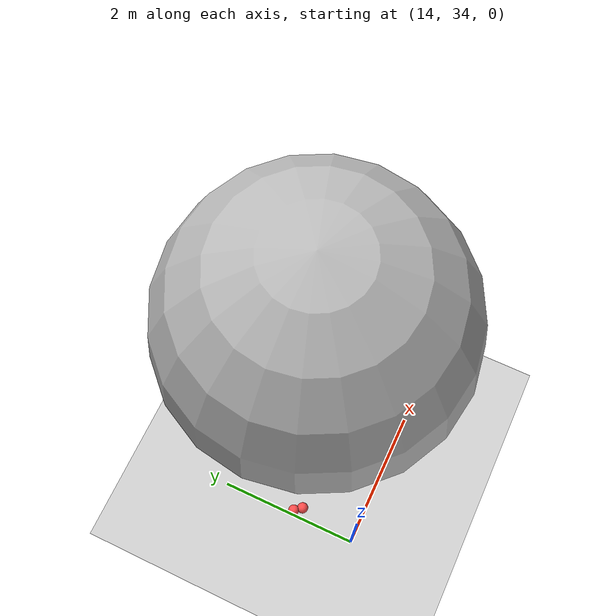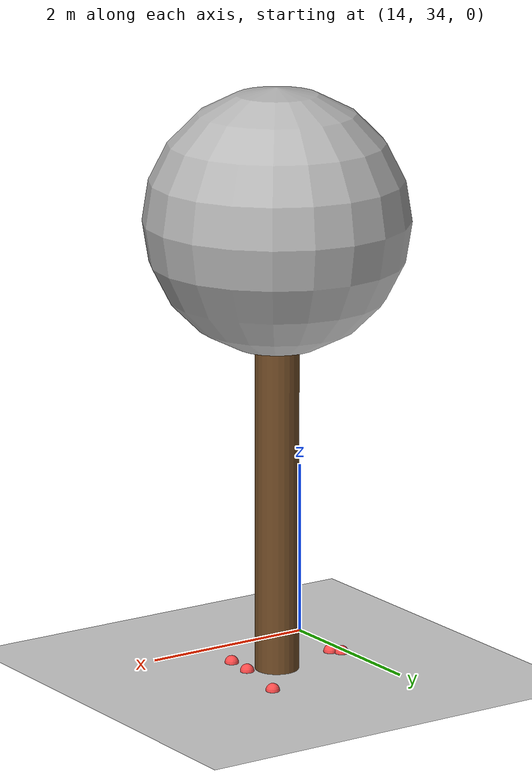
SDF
<sdf version="1.7">
 <world name="default">
  <model name="ground_plane">
   <static>1</static>
   <link name="link">
    <collision name="collision">
     <geometry><plane><normal>0 0 1</normal><size>100 100</size></plane></geometry>
     <surface>
      <contact><collide_bitmask>65535</collide_bitmask></contact>
      <friction><ode><mu>100</mu><mu2>50</mu2></ode></friction>
     </surface>
    </collision>
    <visual name="visual">
     <cast_shadows>0</cast_shadows>
     <geometry><plane><normal>0 0 1</normal><size>100 100</size></plane></geometry>
     <material>
      <script><uri>file://media/materials/scripts/gazebo.material</uri><name>Gazebo/Grey</name></script>
     </material>
    </visual>
   </link>
  </model>
  <model name="tree_simple_21">
   <static>1</static>
   <link name="link">
    <pose>0 0 0.1 0 -0 0</pose>
    <inertial>
     <mass>666</mass>
     <inertia>
      <ixx>0.0861167</ixx>
      <ixy>0</ixy>
      <ixz>0</ixz>
      <iyy>0.0861167</iyy>
      <iyz>0</iyz>
      <izz>0.0861167</izz>
     </inertia>
    </inertial>
    <collision name="collision_trunk">
     <pose>0 0 2 0 -0 0</pose>
     <geometry><cylinder><radius>0.25</radius><length>4</length></cylinder></geometry>
     <surface>
      <contact>
       <poissons_ratio>0.347</poissons_ratio>
       <elastic_modulus>8.8e+09</elastic_modulus>
       <ode><kp>100000</kp><kd>100</kd><max_vel>100</max_vel><min_depth>0.001</min_depth></ode>
      </contact>
      <friction>
       <torsional>
        <coefficient>1</coefficient>
        <use_patch_radius>0</use_patch_radius>
        <surface_radius>0.01</surface_radius>
       </torsional>
      </friction>
     </surface>
    </collision>
    <collision name="collision_treetop">
     <pose>0 0 5.2 0 -0 0</pose>
     <geometry><sphere><radius>1.5</radius></sphere></geometry>
     <surface>
      <contact>
       <poissons_ratio>0.347</poissons_ratio>
       <elastic_modulus>8.8e+09</elastic_modulus>
       <ode><kp>100000</kp><kd>100</kd><max_vel>100</max_vel><min_depth>0.001</min_depth></ode>
      </contact>
      <friction>
       <torsional>
        <coefficient>1</coefficient>
        <use_patch_radius>0</use_patch_radius>
        <surface_radius>0.01</surface_radius>
       </torsional>
      </friction>
     </surface>
    </collision>
    <visual name="trunk">
     <pose>0 0 2 0 -0 0</pose>
     <geometry><cylinder><radius>0.25</radius><length>4</length></cylinder></geometry>
     <material>
      <script>
       <uri>model://tree_simple/scripts</uri>
       <uri>model://tree_simple/materials/textures</uri>
       <name>TreeSimple/Trunk</name>
      </script>
     </material>
    </visual>
    <visual name="treetop">
     <pose>0 0 5.2 0 -0 0</pose>
     <geometry><sphere><radius>1.5</radius></sphere></geometry>
     <material>
      <script>
       <uri>model://tree_simple/scripts</uri>
       <uri>model://tree_simple/materials/textures</uri>
       <name>TreeSimple/Treetop</name>
      </script>
     </material>
    </visual>
   </link>
   <pose>15 35 -0.1 0 -0 0</pose>
  </model>
  <model name="seed_red_79">
   <link name="link">
    <inertial>
     <mass>1</mass>
     <inertia><ixx>0.1</ixx><ixy>0</ixy><ixz>0</ixz><iyy>0.1</iyy><iyz>0</iyz><izz>0.1</izz></inertia>
    </inertial>
    <visual name="visual">
     <geometry><sphere><radius>0.08</radius></sphere></geometry>
     <material>
      <script><name>Gazebo/Grey</name><uri>file://media/materials/scripts/gazebo.material</uri></script>
      <shader type="pixel"><normal_map>__default__</normal_map></shader>
      <ambient>1 0.3 0.3 1</ambient>
      <diffuse>0.7 0.7 0.7 1</diffuse>
      <specular>0.01 0.01 0.01 1</specular>
      <emissive>0 0 0 1</emissive>
     </material>
    </visual>
    <collision name="collision">
     <geometry><sphere><radius>0.0005</radius></sphere></geometry>
     <surface>
      <friction>
       <ode><mu>1</mu><mu2>1</mu2><fdir1>0 0 0</fdir1><slip1>0</slip1><slip2>0</slip2></ode>
       <torsional>
        <coefficient>1</coefficient>
        <patch_radius>0</patch_radius>
        <surface_radius>0</surface_radius>
        <use_patch_radius>1</use_patch_radius>
        <ode><slip>0</slip></ode>
       </torsional>
      </friction>
      <bounce><restitution_coefficient>0</restitution_coefficient><threshold>1e+06</threshold></bounce>
      <contact>
       <collide_without_contact>0</collide_without_contact>
       <collide_without_contact_bitmask>1</collide_without_contact_bitmask>
       <collide_bitmask>1</collide_bitmask>
       <ode>
        <soft_cfm>0</soft_cfm>
        <soft_erp>0.2</soft_erp>
        <kp>1e+13</kp>
        <kd>1</kd>
        <max_vel>0.01</max_vel>
        <min_depth>0</min_depth>
       </ode>
       <bullet>
        <split_impulse>1</split_impulse>
        <split_impulse_penetration_threshold>-0.01</split_impulse_penetration_threshold>
        <soft_cfm>0</soft_cfm>
        <soft_erp>0.2</soft_erp>
        <kp>1e+13</kp>
        <kd>1</kd>
       </bullet>
      </contact>
     </surface>
    </collision>
   </link>
   <static>0</static>
   <pose>15.4875 35.6346 0.0005 0 -0 0</pose>
  </model>
  <model name="seed_red_80">
   <link name="link">
    <inertial>
     <mass>1</mass>
     <inertia><ixx>0.1</ixx><ixy>0</ixy><ixz>0</ixz><iyy>0.1</iyy><iyz>0</iyz><izz>0.1</izz></inertia>
    </inertial>
    <visual name="visual">
     <geometry><sphere><radius>0.08</radius></sphere></geometry>
     <material>
      <script><name>Gazebo/Grey</name><uri>file://media/materials/scripts/gazebo.material</uri></script>
      <shader type="pixel"><normal_map>__default__</normal_map></shader>
      <ambient>1 0.3 0.3 1</ambient>
      <diffuse>0.7 0.7 0.7 1</diffuse>
      <specular>0.01 0.01 0.01 1</specular>
      <emissive>0 0 0 1</emissive>
     </material>
    </visual>
    <collision name="collision">
     <geometry><sphere><radius>0.0005</radius></sphere></geometry>
     <surface>
      <friction>
       <ode><mu>1</mu><mu2>1</mu2><fdir1>0 0 0</fdir1><slip1>0</slip1><slip2>0</slip2></ode>
       <torsional>
        <coefficient>1</coefficient>
        <patch_radius>0</patch_radius>
        <surface_radius>0</surface_radius>
        <use_patch_radius>1</use_patch_radius>
        <ode><slip>0</slip></ode>
       </torsional>
      </friction>
      <bounce><restitution_coefficient>0</restitution_coefficient><threshold>1e+06</threshold></bounce>
      <contact>
       <collide_without_contact>0</collide_without_contact>
       <collide_without_contact_bitmask>1</collide_without_contact_bitmask>
       <collide_bitmask>1</collide_bitmask>
       <ode>
        <soft_cfm>0</soft_cfm>
        <soft_erp>0.2</soft_erp>
        <kp>1e+13</kp>
        <kd>1</kd>
        <max_vel>0.01</max_vel>
        <min_depth>0</min_depth>
       </ode>
       <bullet>
        <split_impulse>1</split_impulse>
        <split_impulse_penetration_threshold>-0.01</split_impulse_penetration_threshold>
        <soft_cfm>0</soft_cfm>
        <soft_erp>0.2</soft_erp>
        <kp>1e+13</kp>
        <kd>1</kd>
       </bullet>
      </contact>
     </surface>
    </collision>
   </link>
   <static>0</static>
   <pose>14.1517 34.8392 0.0005 0 -0 0</pose>
  </model>
  <model name="seed_red_81">
   <link name="link">
    <inertial>
     <mass>1</mass>
     <inertia><ixx>0.1</ixx><ixy>0</ixy><ixz>0</ixz><iyy>0.1</iyy><iyz>0</iyz><izz>0.1</izz></inertia>
    </inertial>
    <visual name="visual">
     <geometry><sphere><radius>0.08</radius></sphere></geometry>
     <material>
      <script><name>Gazebo/Grey</name><uri>file://media/materials/scripts/gazebo.material</uri></script>
      <shader type="pixel"><normal_map>__default__</normal_map></shader>
      <ambient>1 0.3 0.3 1</ambient>
      <diffuse>0.7 0.7 0.7 1</diffuse>
      <specular>0.01 0.01 0.01 1</specular>
      <emissive>0 0 0 1</emissive>
     </material>
    </visual>
    <collision name="collision">
     <geometry><sphere><radius>0.0005</radius></sphere></geometry>
     <surface>
      <friction>
       <ode><mu>1</mu><mu2>1</mu2><fdir1>0 0 0</fdir1><slip1>0</slip1><slip2>0</slip2></ode>
       <torsional>
        <coefficient>1</coefficient>
        <patch_radius>0</patch_radius>
        <surface_radius>0</surface_radius>
        <use_patch_radius>1</use_patch_radius>
        <ode><slip>0</slip></ode>
       </torsional>
      </friction>
      <bounce><restitution_coefficient>0</restitution_coefficient><threshold>1e+06</threshold></bounce>
      <contact>
       <collide_without_contact>0</collide_without_contact>
       <collide_without_contact_bitmask>1</collide_without_contact_bitmask>
       <collide_bitmask>1</collide_bitmask>
       <ode>
        <soft_cfm>0</soft_cfm>
        <soft_erp>0.2</soft_erp>
        <kp>1e+13</kp>
        <kd>1</kd>
        <max_vel>0.01</max_vel>
        <min_depth>0</min_depth>
       </ode>
       <bullet>
        <split_impulse>1</split_impulse>
        <split_impulse_penetration_threshold>-0.01</split_impulse_penetration_threshold>
        <soft_cfm>0</soft_cfm>
        <soft_erp>0.2</soft_erp>
        <kp>1e+13</kp>
        <kd>1</kd>
       </bullet>
      </contact>
     </surface>
    </collision>
   </link>
   <static>0</static>
   <pose>15.3133 34.5451 0.0005 0 -0 0</pose>
  </model>
  <model name="seed_red_83">
   <link name="link">
    <inertial>
     <mass>1</mass>
     <inertia><ixx>0.1</ixx><ixy>0</ixy><ixz>0</ixz><iyy>0.1</iyy><iyz>0</iyz><izz>0.1</izz></inertia>
    </inertial>
    <visual name="visual">
     <geometry><sphere><radius>0.08</radius></sphere></geometry>
     <material>
      <script><name>Gazebo/Grey</name><uri>file://media/materials/scripts/gazebo.material</uri></script>
      <shader type="pixel"><normal_map>__default__</normal_map></shader>
      <ambient>1 0.3 0.3 1</ambient>
      <diffuse>0.7 0.7 0.7 1</diffuse>
      <specular>0.01 0.01 0.01 1</specular>
      <emissive>0 0 0 1</emissive>
     </material>
    </visual>
    <collision name="collision">
     <geometry><sphere><radius>0.0005</radius></sphere></geometry>
     <surface>
      <friction>
       <ode><mu>1</mu><mu2>1</mu2><fdir1>0 0 0</fdir1><slip1>0</slip1><slip2>0</slip2></ode>
       <torsional>
        <coefficient>1</coefficient>
        <patch_radius>0</patch_radius>
        <surface_radius>0</surface_radius>
        <use_patch_radius>1</use_patch_radius>
        <ode><slip>0</slip></ode>
       </torsional>
      </friction>
      <bounce><restitution_coefficient>0</restitution_coefficient><threshold>1e+06</threshold></bounce>
      <contact>
       <collide_without_contact>0</collide_without_contact>
       <collide_without_contact_bitmask>1</collide_without_contact_bitmask>
       <collide_bitmask>1</collide_bitmask>
       <ode>
        <soft_cfm>0</soft_cfm>
        <soft_erp>0.2</soft_erp>
        <kp>1e+13</kp>
        <kd>1</kd>
        <max_vel>0.01</max_vel>
        <min_depth>0</min_depth>
       </ode>
       <bullet>
        <split_impulse>1</split_impulse>
        <split_impulse_penetration_threshold>-0.01</split_impulse_penetration_threshold>
        <soft_cfm>0</soft_cfm>
        <soft_erp>0.2</soft_erp>
        <kp>1e+13</kp>
        <kd>1</kd>
       </bullet>
      </contact>
     </surface>
    </collision>
   </link>
   <static>0</static>
   <pose>15.3382 34.897 0.0005 0 -0 0</pose>
  </model>
  <model name="seed_red_84">
   <link name="link">
    <inertial>
     <mass>1</mass>
     <inertia><ixx>0.1</ixx><ixy>0</ixy><ixz>0</ixz><iyy>0.1</iyy><iyz>0</iyz><izz>0.1</izz></inertia>
    </inertial>
    <visual name="visual">
     <geometry><sphere><radius>0.08</radius></sphere></geometry>
     <material>
      <script><name>Gazebo/Grey</name><uri>file://media/materials/scripts/gazebo.material</uri></script>
      <shader type="pixel"><normal_map>__default__</normal_map></shader>
      <ambient>1 0.3 0.3 1</ambient>
      <diffuse>0.7 0.7 0.7 1</diffuse>
      <specular>0.01 0.01 0.01 1</specular>
      <emissive>0 0 0 1</emissive>
     </material>
    </visual>
    <collision name="collision">
     <geometry><sphere><radius>0.0005</radius></sphere></geometry>
     <surface>
      <friction>
       <ode><mu>1</mu><mu2>1</mu2><fdir1>0 0 0</fdir1><slip1>0</slip1><slip2>0</slip2></ode>
       <torsional>
        <coefficient>1</coefficient>
        <patch_radius>0</patch_radius>
        <surface_radius>0</surface_radius>
        <use_patch_radius>1</use_patch_radius>
        <ode><slip>0</slip></ode>
       </torsional>
      </friction>
      <bounce><restitution_coefficient>0</restitution_coefficient><threshold>1e+06</threshold></bounce>
      <contact>
       <collide_without_contact>0</collide_without_contact>
       <collide_without_contact_bitmask>1</collide_without_contact_bitmask>
       <collide_bitmask>1</collide_bitmask>
       <ode>
        <soft_cfm>0</soft_cfm>
        <soft_erp>0.2</soft_erp>
        <kp>1e+13</kp>
        <kd>1</kd>
        <max_vel>0.01</max_vel>
        <min_depth>0</min_depth>
       </ode>
       <bullet>
        <split_impulse>1</split_impulse>
        <split_impulse_penetration_threshold>-0.01</split_impulse_penetration_threshold>
        <soft_cfm>0</soft_cfm>
        <soft_erp>0.2</soft_erp>
        <kp>1e+13</kp>
        <kd>1</kd>
       </bullet>
      </contact>
     </surface>
    </collision>
   </link>
   <static>0</static>
   <pose>14.0677 34.9432 0.0005 0 -0 0</pose>
  </model>
 </world>
</sdf>
